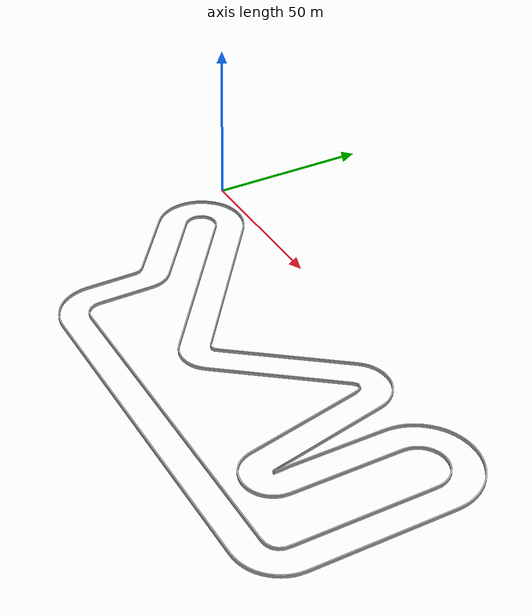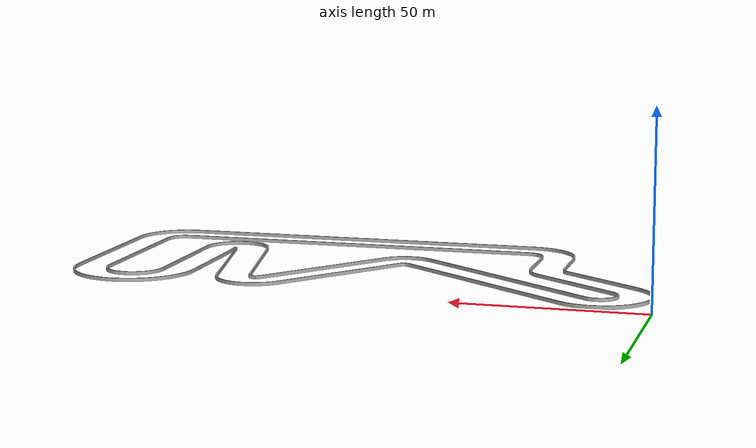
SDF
<sdf version='1.6'>
    <model name='EVGPTrack1'>
        <link name='inner_boundary'>
            <visual name='visual'>
                <geometry>
                    <mesh>
                        <uri>model://EVGPTrack2/evgp_2020_layout_inner.stl</uri>
                        <scale>1 1 2</scale>
                    </mesh>
                </geometry>
                <material>
                    <ambient>0.7 0.7 0.7 1</ambient>
                    <diffuse>0.7 0.7 0.7 1</diffuse>
                </material>
            </visual>
            <collision name='collision'>
                <geometry>
                    <mesh>
                        <uri>model://EVGPTrack2/evgp_2020_layout_inner.stl</uri>
                        <scale>1 1 2</scale>
                    </mesh>
                </geometry>
                <surface>
                    <contact>
                        <collide_bitmask>0x1</collide_bitmask>
                    </contact>
                </surface>
            </collision>
        </link>

        <link name='outer_boundary'>
            <visual name='visual'>
                <geometry>
                    <mesh>
                        <uri>model://EVGPTrack2/evgp_2020_layout_outer.stl</uri>
                        <scale>1 1 2</scale>
                    </mesh>
                </geometry>
                <material>
                    <ambient>0.7 0.7 0.7 1</ambient>
                    <diffuse>0.7 0.7 0.7 1</diffuse>
                </material>
            </visual>
            <collision name='collision'>
                <geometry>
                    <mesh>
                        <uri>model://EVGPTrack2/evgp_2020_layout_outer.stl</uri>
                        <scale>1 1 2</scale>
                    </mesh>
                </geometry>
                <surface>
                    <contact>
                        <collide_bitmask>0x1</collide_bitmask>
                    </contact>
                </surface>
            </collision>
        </link>

        <static>true</static>
        <allow_auto_disable>0</allow_auto_disable>
    </model>
</sdf>
